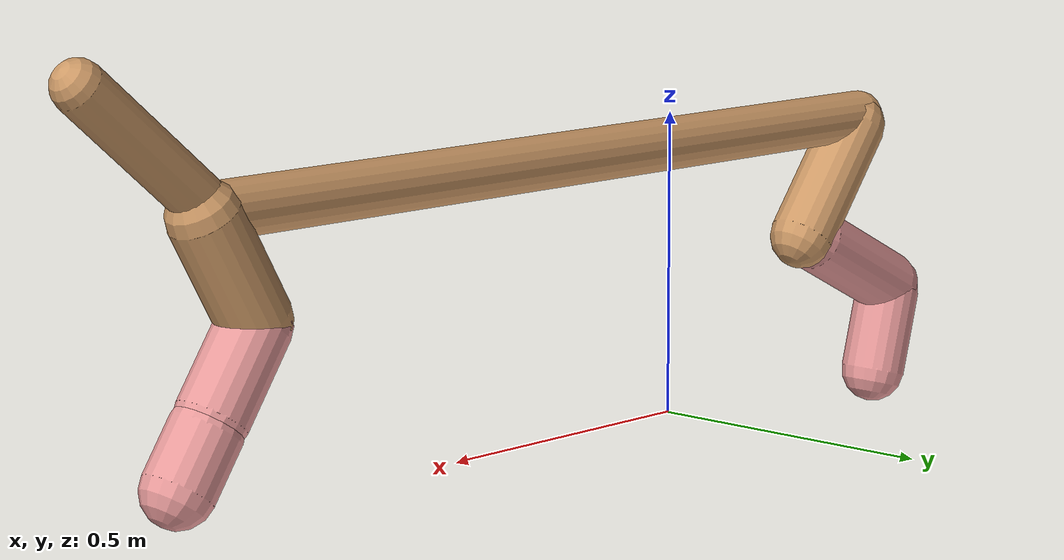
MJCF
<mujoco model="cheetah">
  <compiler angle="radian" coordinate="local" inertiafromgeom="true" settotalmass="14" />
  <default>
    <joint armature=".1" damping=".01" limited="true" solimplimit="0 .8 .03" solreflimit=".02 1" stiffness="8" />
    <geom conaffinity="0" condim="3" contype="1" friction="0.8 .1 .1" rgba="0.8 0.6 .4 1" solimp="0.0 0.8 0.01" solref="0.02 1" />
    <motor ctrllimited="true" ctrlrange="-1 1" />
  </default>
  <size nstack="300000" nuser_geom="1" />
  <option gravity="0 0 -9.81" timestep="0.01" />
  <worldbody>
    <body name="torso" pos="0.0 0.0 0.4485519326179659">
      <joint armature="0" axis="1 0 0" damping="0" limited="false" name="ignorex" pos="0 0 0" stiffness="0" type="slide" />
      <joint armature="0" axis="0 0 1" damping="0" limited="false" name="ignorez" pos="0 0 0" stiffness="0" type="slide" />
      <joint armature="0" axis="0 1 0" damping="0" limited="false" name="ignorey" pos="0 0 0" stiffness="0" type="hinge" />
      <geom fromto="-0.5 0.0 0.0 1.0060937639204872 0.0 0.0" name="torso" size="0.0433987004022782" type="capsule" />
      <geom axisangle="0 1 0 .87" name="head" pos="1.1060937639204873 0.0 0.1" size="0.03994222834832539 0.15" type="capsule" />

      <body name="bthigh" pos="-.5 0 0">
        <joint axis="0 1 0" damping="6" name="bthigh" pos="0 0 0" range="-.52 1.05" stiffness="240" type="hinge" />
        <geom axisangle="0 1 0 -3.8" name="bthigh" pos="0.08116098651757264 0.0 -0.10550928247284444" size="0.055206860344287643 0.1141017205335636" type="capsule" />
        <body name="bshin" pos="0.12232197303514528 0.0 -0.20101856494568887">
          <joint axis="0 1 0" damping="4.5" name="bshin" pos="0 0 0" range="-.785 .785" stiffness="180" type="hinge" />
          <geom axisangle="0 1 0 -2.03" name="bshin" pos="-0.11141076416217752 0.0 -0.05570538208108876" rgba="0.9 0.6 0.6 1" size="0.055206860344287643 0.11803626262092787" type="capsule" />
          <body name="bfoot" pos="-0.22282152832435503 0.0 -0.11141076416217752">
            <joint axis="0 1 0" damping="3" name="bfoot" pos="0 0 0" range="-.4 .785" stiffness="120" type="hinge" />
            <geom axisangle="0 1 0 -.27" name="bfoot" pos="0.024081561580445807 0.0 -0.07786371577677478" rgba="0.9 0.6 0.6 1" size="0.055206860344287643 0.07396939124244813" type="capsule" />
            <inertial mass="10" />
          </body>
        </body>
      </body>
      <body name="fthigh" pos="1.0060937639204872 0.0 0.0">
        <joint axis="0 1 0" damping="4.5" name="fthigh" pos="0 0 0" range="-1.5 0.8" stiffness="180" type="hinge" />
        <geom axisangle="0 1 0 .52" name="fthigh" pos="-0.04989554608158897 0.0 -0.0855352218541525" size="0.05674524723334027 0.0931" type="capsule" />
        <body name="fshin" pos="-0.09979109216317794 0.0 -0.171070443708305">
          <joint axis="0 1 0" damping="3" name="fshin" pos="0 0 0" range="-1.2 1.1" stiffness="120" type="hinge" />
          <geom axisangle="0 1 0 -.6" name="fshin" pos="0.046381400387749405 0.0 -0.06422040053688378" rgba="0.9 0.6 0.6 1" size="0.05674524723334027 0.07419999999999999" type="capsule" />
          <body name="ffoot" pos="0.09276280077549881 0.0 -0.12844080107376757">
            <joint axis="0 1 0" damping="1.5" name="ffoot" pos="0 0 0" range="-3.1 -0.3" stiffness="60" type="hinge" />
            <geom axisangle="0 1 0 -.6" name="ffoot" pos="0.033644090582416526 0.0 -0.05233525201709238" rgba="0.9 0.6 0.6 1" size="0.05674524723334027 0.049" type="capsule" />
            <inertial mass="10" />
          </body>
        </body>
      </body>
    </body>
  </worldbody>
  <actuator>
    <motor gear="120" joint="bthigh" name="bthigh" />
    <motor gear="90" joint="bshin" name="bshin" />
    <motor gear="60" joint="bfoot" name="bfoot" />
    <motor gear="120" joint="fthigh" name="fthigh" />
    <motor gear="60" joint="fshin" name="fshin" />
    <motor gear="30" joint="ffoot" name="ffoot" />
  </actuator>
</mujoco>
